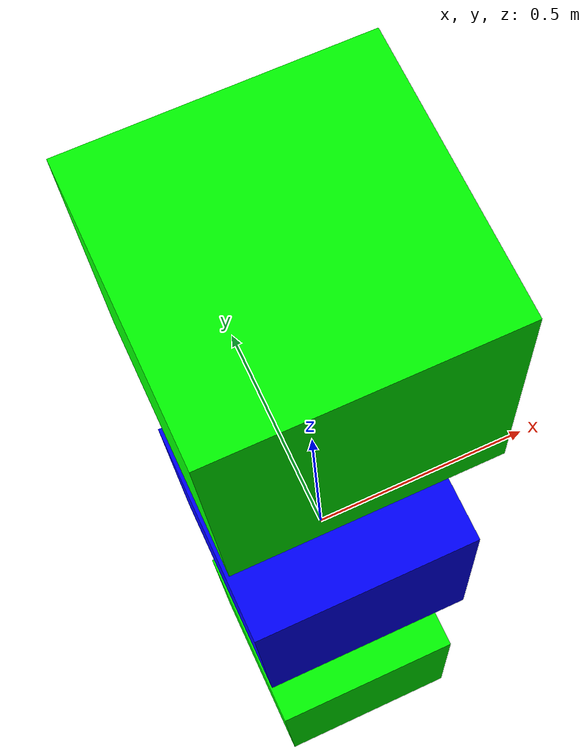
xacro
<?xml version="1.0"?>
<robot name="simple_robot" xmlns:xacro="http://www.ros.org/wiki/xacro">
    <!--birden fazla dosya oluşturulduğunda bağlantıları sağlamak için kullanılan ana yönetim dosyası-->
    <xacro:include filename="colors.xacro" />
    <xacro:include filename="test.xacro" />
</robot>

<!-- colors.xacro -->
<robot name="simple_robot" xmlns:xacro="http://www.ros.org/wiki/xacro">
    <!-- parçaların renk gibi özelliklerini tanımlamak için kullanılır(tekrara düşmemek için)-->

    <material name="blue">
        <color rgba="0 0 1 1"/> <!-- red, yeşil, mavi, opaklık-->
    </material>
    <material name="green">
        <color rgba="0 1 0 1"/> <!-- red, yeşil, mavi, opaklık-->
    </material>

    <material name="red">
        <color rgba="1 0 0 1"/> <!-- red, yeşil, mavi, opaklık-->
    </material>
</robot>

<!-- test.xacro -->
<!--xacro dosyası olduğunu bildirmek gerekli-->
<!--xacro dosyası iledeğerlere değişken olarak atayabiliyoruz-->
<robot name="simple_robot" xmlns:xacro="http://www.ros.org/wiki/xacro"> <!-- Robot adı taşıyan ana etiket-->

    <!-- değişken tanımlama-->
     <xacro:property name="base_width" value="0.5" />
     <xacro:property name="base_height" value="0.5" />
     <xacro:property name="base_length" value="0.5" />

    <!-- link: robotun her fiziksel bir parçası(tekerlek, gövde gibi)-->
     <link  name="base_link"> <!--robotun katı bir kısmı yani ana gövdesi-->
        <visual> <!-- şekil boyut konum gibi görsel özellikler tanımlanır içinde-->
            <geometry> <!-- öğenin geometrik şeklinin içinde barındırır-->
                <box size="0.5 0.5 0.5" />
            </geometry>
            <origin xyz="0 0 0" rpy="0 0 0" /> <!--rpy = (roll, pitch, yaw) x y z eksenlerinin saat yönünde dönüş açıları -->
            <!--xyz= merkez noktasının uzaydaki konumu -->
            <material name="blue"/>
        </visual>
    </link>

    <!-- programlamadaki fonksiyon mantığı ile çalışır-->
     <xacro:macro name="arm_link" params="prefix">
        <link  name="${prefix}_arm_link"> <!--robotun katı bir kısmı yani ana gövdesi-->
            <visual> <!-- şekil boyut konum gibi görsel özellikler tanımlanır içinde-->
                <geometry> <!-- öğenin geometrik şeklinin içinde barındırır-->
                    <box size="${base_width} ${base_length} ${base_height}" />
                </geometry>
                <origin xyz="0 0 0" rpy="0 0 0" /> <!--rpy = (roll, pitch, yaw) x y z eksenlerinin saat yönünde dönüş açıları -->
                <!--xyz= merkez noktasının uzaydaki konumu -->
                <material name="green"/>
            </visual>
        </link>
     </xacro:macro>

     <!--macro oluşturuldu-->
    <xacro:arm_link prefix="left"/>
    <xacro:arm_link prefix="right"/>

    <!-- joint: linkler arasındaki bağlantılar eklemlerdir-->

    <!--gövde ile sol kol bağlantısı-->
    <joint name="base_left_arm_joint" type="fixed">
        <parent link="base_link"/>
        <child link="left_arm_link"/>
        <origin xyz="0 0 1.0" rpy="0 0 0"/> <!-- ana kola uzaklık-->
    </joint>

    <!--gövde ile sağ kol bağlantısı-->
    <joint name="base_right_arm_joint" type="fixed">
        <parent link="base_link"/>
        <child link="right_arm_link"/>
        <origin xyz="0 0 -1.0" rpy="0 0 0"/>
    </joint>

</robot>
